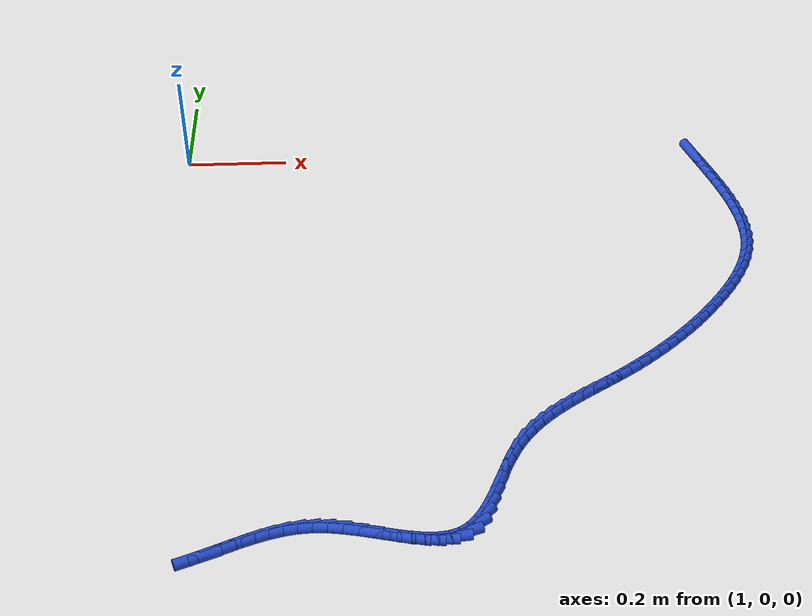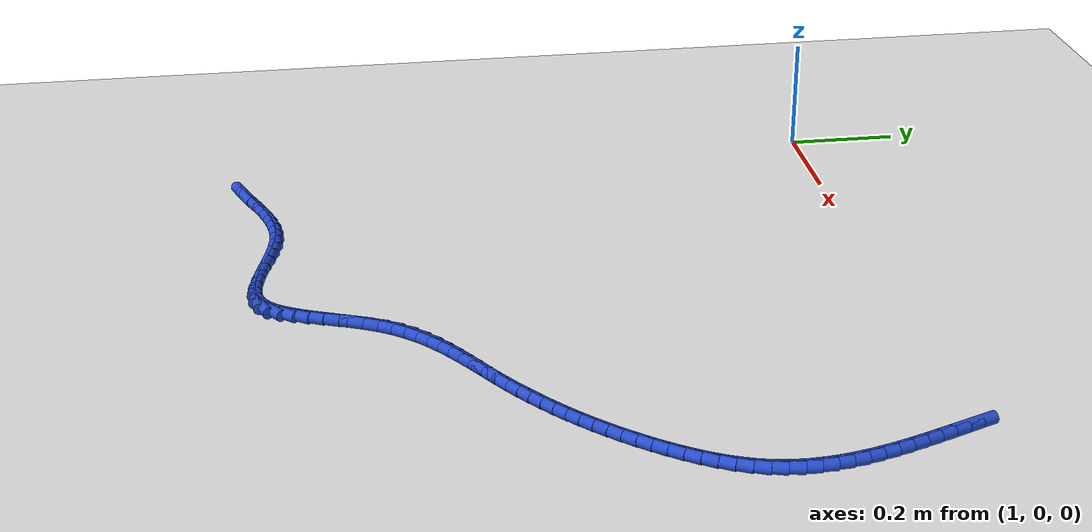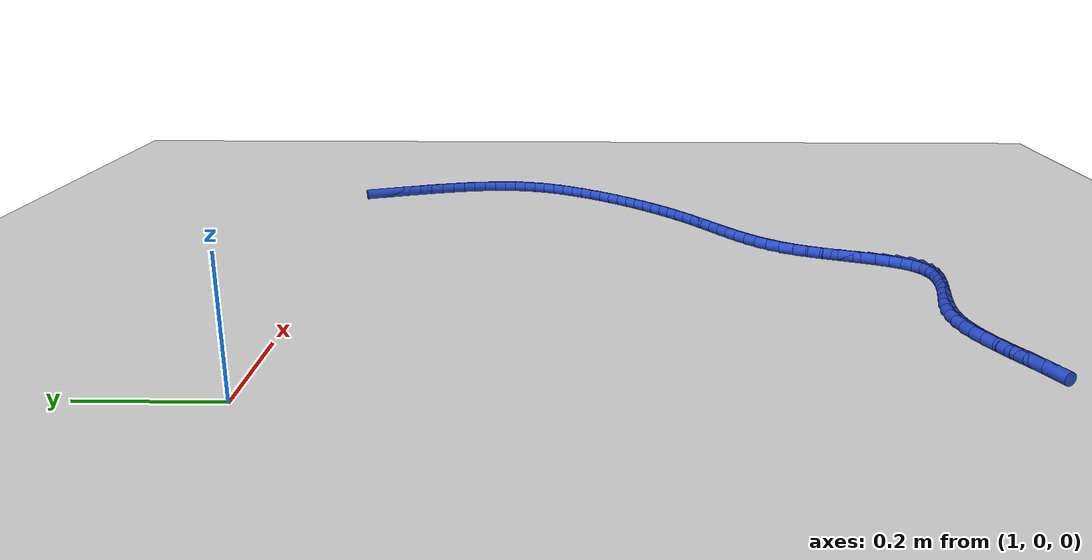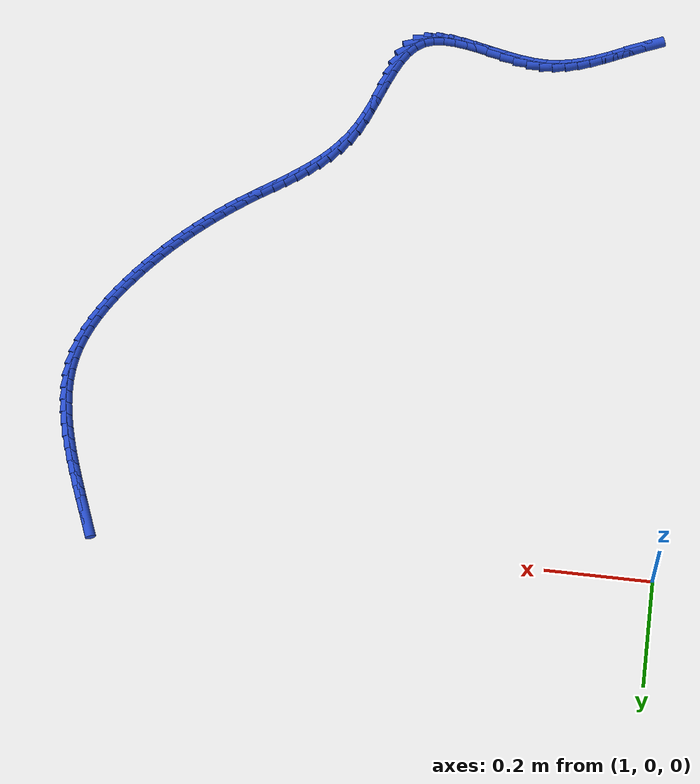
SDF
<sdf version="1.6">
 <world name="default">
  <model name="ground_plane">
   <static>1</static>
   <link name="link">
    <collision name="collision">
     <geometry><plane><normal>0 0 1</normal><size>100 100</size></plane></geometry>
     <surface><friction><ode><mu>100</mu><mu2>50</mu2></ode></friction></surface>
    </collision>
    <visual name="visual">
     <cast_shadows>0</cast_shadows>
     <geometry><plane><normal>0 0 1</normal><size>100 100</size></plane></geometry>
     <material>
      <script><uri>file://media/materials/scripts/gazebo.material</uri><name>Gazebo/WhiteGlow</name></script>
     </material>
    </visual>
   </link>
  </model>
  <model name="line">
   <link name="link_139">
    <pose>2.050679648793524 -0.008787013606834999 0.01 0 1.57 -1.2144746183045905</pose>
    <collision name="collision">
     <geometry><cylinder><radius>0.01</radius><length>0.08</length></cylinder></geometry>
    </collision>
    <visual name="visual">
     <material>
      <script><name>Gazebo/Blue</name><uri>file://media/materials/scripts/gazebo.material</uri></script>
     </material>
     <geometry><cylinder><radius>0.01</radius><length>0.08</length></cylinder></geometry>
    </visual>
   </link>
   <link name="link_140">
    <pose>2.059538758698401 -0.03258843941450075 0.01 0 1.57 -1.215392677395556</pose>
    <collision name="collision">
     <geometry><cylinder><radius>0.01</radius><length>0.08</length></cylinder></geometry>
    </collision>
    <visual name="visual">
     <material>
      <script><name>Gazebo/Blue</name><uri>file://media/materials/scripts/gazebo.material</uri></script>
     </material>
     <geometry><cylinder><radius>0.01</radius><length>0.08</length></cylinder></geometry>
    </visual>
   </link>
   <link name="link_141">
    <pose>2.068392164136328 -0.05644150112282558 0.01 0 1.57 -1.2226019553907888</pose>
    <collision name="collision">
     <geometry><cylinder><radius>0.01</radius><length>0.08</length></cylinder></geometry>
    </collision>
    <visual name="visual">
     <material>
      <script><name>Gazebo/Blue</name><uri>file://media/materials/scripts/gazebo.material</uri></script>
     </material>
     <geometry><cylinder><radius>0.01</radius><length>0.08</length></cylinder></geometry>
    </visual>
   </link>
   <link name="link_142">
    <pose>2.077060394429742 -0.08032200104298498 0.01 0 1.57 -1.2362015601811205</pose>
    <collision name="collision">
     <geometry><cylinder><radius>0.01</radius><length>0.08</length></cylinder></geometry>
    </collision>
    <visual name="visual">
     <material>
      <script><name>Gazebo/Blue</name><uri>file://media/materials/scripts/gazebo.material</uri></script>
     </material>
     <geometry><cylinder><radius>0.01</radius><length>0.08</length></cylinder></geometry>
    </visual>
   </link>
   <link name="link_143">
    <pose>2.0853639789010807 -0.104205741486154 0.01 0 1.57 -1.2564104210199147</pose>
    <collision name="collision">
     <geometry><cylinder><radius>0.01</radius><length>0.08</length></cylinder></geometry>
    </collision>
    <visual name="visual">
     <material>
      <script><name>Gazebo/Blue</name><uri>file://media/materials/scripts/gazebo.material</uri></script>
     </material>
     <geometry><cylinder><radius>0.01</radius><length>0.08</length></cylinder></geometry>
    </visual>
   </link>
   <link name="link_144">
    <pose>2.0931234468727795 -0.1280685247635077 0.01 0 1.57 -1.2835591183289392</pose>
    <collision name="collision">
     <geometry><cylinder><radius>0.01</radius><length>0.08</length></cylinder></geometry>
    </collision>
    <visual name="visual">
     <material>
      <script><name>Gazebo/Blue</name><uri>file://media/materials/scripts/gazebo.material</uri></script>
     </material>
     <geometry><cylinder><radius>0.01</radius><length>0.08</length></cylinder></geometry>
    </visual>
   </link>
   <link name="link_145">
    <pose>2.1001593276672774 -0.15188615318622126 0.01 0 1.57 -1.3180748398498234</pose>
    <collision name="collision">
     <geometry><cylinder><radius>0.01</radius><length>0.08</length></cylinder></geometry>
    </collision>
    <visual name="visual">
     <material>
      <script><name>Gazebo/Blue</name><uri>file://media/materials/scripts/gazebo.material</uri></script>
     </material>
     <geometry><cylinder><radius>0.01</radius><length>0.08</length></cylinder></geometry>
    </visual>
   </link>
   <link name="link_146">
    <pose>2.1062921506070102 -0.1756344290654704 0.01 0 1.57 -1.360453910092519</pose>
    <collision name="collision">
     <geometry><cylinder><radius>0.01</radius><length>0.08</length></cylinder></geometry>
    </collision>
    <visual name="visual">
     <material>
      <script><name>Gazebo/Blue</name><uri>file://media/materials/scripts/gazebo.material</uri></script>
     </material>
     <geometry><cylinder><radius>0.01</radius><length>0.08</length></cylinder></geometry>
    </visual>
   </link>
   <link name="link_147">
    <pose>2.1113424450144147 -0.19928915471242875 0.01 0 1.57 -1.411214143443674</pose>
    <collision name="collision">
     <geometry><cylinder><radius>0.01</radius><length>0.08</length></cylinder></geometry>
    </collision>
    <visual name="visual">
     <material>
      <script><name>Gazebo/Blue</name><uri>file://media/materials/scripts/gazebo.material</uri></script>
     </material>
     <geometry><cylinder><radius>0.01</radius><length>0.08</length></cylinder></geometry>
    </visual>
   </link>
   <link name="link_148">
    <pose>2.1151307402119284 -0.22282613243827226 0.01 0 1.57 -1.470817806057557</pose>
    <collision name="collision">
     <geometry><cylinder><radius>0.01</radius><length>0.08</length></cylinder></geometry>
    </collision>
    <visual name="visual">
     <material>
      <script><name>Gazebo/Blue</name><uri>file://media/materials/scripts/gazebo.material</uri></script>
     </material>
     <geometry><cylinder><radius>0.01</radius><length>0.08</length></cylinder></geometry>
    </visual>
   </link>
   <link name="link_149">
    <pose>2.1174775655219884 -0.24622116455417586 0.01 0 1.57 -1.5395572688172277</pose>
    <collision name="collision">
     <geometry><cylinder><radius>0.01</radius><length>0.08</length></cylinder></geometry>
    </collision>
    <visual name="visual">
     <material>
      <script><name>Gazebo/Blue</name><uri>file://media/materials/scripts/gazebo.material</uri></script>
     </material>
     <geometry><cylinder><radius>0.01</radius><length>0.08</length></cylinder></geometry>
    </visual>
   </link>
   <link name="link_150">
    <pose>2.1182034502670315 -0.2694500533713148 0.01 0 1.57 1.5241897275901795</pose>
    <collision name="collision">
     <geometry><cylinder><radius>0.01</radius><length>0.08</length></cylinder></geometry>
    </collision>
    <visual name="visual">
     <material>
      <script><name>Gazebo/Blue</name><uri>file://media/materials/scripts/gazebo.material</uri></script>
     </material>
     <geometry><cylinder><radius>0.01</radius><length>0.08</length></cylinder></geometry>
    </visual>
   </link>
   <link name="link_151">
    <pose>2.1171289237694944 -0.29248860120086395 0.01 0 1.57 1.4377623757808604</pose>
    <collision name="collision">
     <geometry><cylinder><radius>0.01</radius><length>0.08</length></cylinder></geometry>
    </collision>
    <visual name="visual">
     <material>
      <script><name>Gazebo/Blue</name><uri>file://media/materials/scripts/gazebo.material</uri></script>
     </material>
     <geometry><cylinder><radius>0.01</radius><length>0.08</length></cylinder></geometry>
    </visual>
   </link>
   <link name="link_152">
    <pose>2.114074515351814 -0.3153126103539986 0.01 0 1.57 1.3442098530349407</pose>
    <collision name="collision">
     <geometry><cylinder><radius>0.01</radius><length>0.08</length></cylinder></geometry>
    </collision>
    <visual name="visual">
     <material>
      <script><name>Gazebo/Blue</name><uri>file://media/materials/scripts/gazebo.material</uri></script>
     </material>
     <geometry><cylinder><radius>0.01</radius><length>0.08</length></cylinder></geometry>
    </visual>
   </link>
   <link name="link_153">
    <pose>2.108867665094674 -0.3378975185701371 0.01 0 1.57 1.2530020199494376</pose>
    <collision name="collision">
     <geometry><cylinder><radius>0.01</radius><length>0.08</length></cylinder></geometry>
    </collision>
    <visual name="visual">
     <material>
      <script><name>Gazebo/Blue</name><uri>file://media/materials/scripts/gazebo.material</uri></script>
     </material>
     <geometry><cylinder><radius>0.01</radius><length>0.08</length></cylinder></geometry>
    </visual>
   </link>
   <link name="link_154">
    <pose>2.101528587020586 -0.3602085939470914 0.01 0 1.57 1.1731261189622686</pose>
    <collision name="collision">
     <geometry><cylinder><radius>0.01</radius><length>0.08</length></cylinder></geometry>
    </collision>
    <visual name="visual">
     <material>
      <script><name>Gazebo/Blue</name><uri>file://media/materials/scripts/gazebo.material</uri></script>
     </material>
     <geometry><cylinder><radius>0.01</radius><length>0.08</length></cylinder></geometry>
    </visual>
   </link>
   <link name="link_155">
    <pose>2.092291174830781 -0.3821998320749336 0.01 0 1.57 1.1042547114081966</pose>
    <collision name="collision">
     <geometry><cylinder><radius>0.01</radius><length>0.08</length></cylinder></geometry>
    </collision>
    <visual name="visual">
     <material>
      <script><name>Gazebo/Blue</name><uri>file://media/materials/scripts/gazebo.material</uri></script>
     </material>
     <geometry><cylinder><radius>0.01</radius><length>0.08</length></cylinder></geometry>
    </visual>
   </link>
   <link name="link_156">
    <pose>2.0814004280314506 -0.40382464266550266 0.01 0 1.57 1.0453451092384771</pose>
    <collision name="collision">
     <geometry><cylinder><radius>0.01</radius><length>0.08</length></cylinder></geometry>
    </collision>
    <visual name="visual">
     <material>
      <script><name>Gazebo/Blue</name><uri>file://media/materials/scripts/gazebo.material</uri></script>
     </material>
     <geometry><cylinder><radius>0.01</radius><length>0.08</length></cylinder></geometry>
    </visual>
   </link>
   <link name="link_157">
    <pose>2.0691013461287824 -0.42503643543063946 0.01 0 1.57 0.9953194126716203</pose>
    <collision name="collision">
     <geometry><cylinder><radius>0.01</radius><length>0.08</length></cylinder></geometry>
    </collision>
    <visual name="visual">
     <material>
      <script><name>Gazebo/Blue</name><uri>file://media/materials/scripts/gazebo.material</uri></script>
     </material>
     <geometry><cylinder><radius>0.01</radius><length>0.08</length></cylinder></geometry>
    </visual>
   </link>
   <link name="link_158">
    <pose>2.0556389286289667 -0.44578862008218423 0.01 0 1.57 0.9531900381116258</pose>
    <collision name="collision">
     <geometry><cylinder><radius>0.01</radius><length>0.08</length></cylinder></geometry>
    </collision>
    <visual name="visual">
     <material>
      <script><name>Gazebo/Blue</name><uri>file://media/materials/scripts/gazebo.material</uri></script>
     </material>
     <geometry><cylinder><radius>0.01</radius><length>0.08</length></cylinder></geometry>
    </visual>
   </link>
   <link name="link_159">
    <pose>2.041258175038193 -0.46603460633197713 0.01 0 1.57 0.9181228567130129</pose>
    <collision name="collision">
     <geometry><cylinder><radius>0.01</radius><length>0.08</length></cylinder></geometry>
    </collision>
    <visual name="visual">
     <material>
      <script><name>Gazebo/Blue</name><uri>file://media/materials/scripts/gazebo.material</uri></script>
     </material>
     <geometry><cylinder><radius>0.01</radius><length>0.08</length></cylinder></geometry>
    </visual>
   </link>
   <link name="link_160">
    <pose>2.0262040718583325 -0.48572780739809107 0.01 0 1.57 0.8882813793783929</pose>
    <collision name="collision">
     <geometry><cylinder><radius>0.01</radius><length>0.08</length></cylinder></geometry>
    </collision>
    <visual name="visual">
     <material>
      <script><name>Gazebo/Blue</name><uri>file://media/materials/scripts/gazebo.material</uri></script>
     </material>
     <geometry><cylinder><radius>0.01</radius><length>0.08</length></cylinder></geometry>
    </visual>
   </link>
   <link name="link_161">
    <pose>2.0106735042192088 -0.5048346056250267 0.01 0 1.57 0.8595409217209122</pose>
    <collision name="collision">
     <geometry><cylinder><radius>0.01</radius><length>0.08</length></cylinder></geometry>
    </collision>
    <visual name="visual">
     <material>
      <script><name>Gazebo/Blue</name><uri>file://media/materials/scripts/gazebo.material</uri></script>
     </material>
     <geometry><cylinder><radius>0.01</radius><length>0.08</length></cylinder></geometry>
    </visual>
   </link>
   <link name="link_162">
    <pose>1.9947068219251365 -0.5233635885240033 0.01 0 1.57 0.8311744569064379</pose>
    <collision name="collision">
     <geometry><cylinder><radius>0.01</radius><length>0.08</length></cylinder></geometry>
    </collision>
    <visual name="visual">
     <material>
      <script><name>Gazebo/Blue</name><uri>file://media/materials/scripts/gazebo.material</uri></script>
     </material>
     <geometry><cylinder><radius>0.01</radius><length>0.08</length></cylinder></geometry>
    </visual>
   </link>
   <link name="link_163">
    <pose>1.9783125863663102 -0.5413319144212507 0.01 0 1.57 0.8032594220083987</pose>
    <collision name="collision">
     <geometry><cylinder><radius>0.01</radius><length>0.08</length></cylinder></geometry>
    </collision>
    <visual name="visual">
     <material>
      <script><name>Gazebo/Blue</name><uri>file://media/materials/scripts/gazebo.material</uri></script>
     </material>
     <geometry><cylinder><radius>0.01</radius><length>0.08</length></cylinder></geometry>
    </visual>
   </link>
   <link name="link_164">
    <pose>1.9614993589329264 -0.558756741643 0.01 0 1.57 0.7758688326804531</pose>
    <collision name="collision">
     <geometry><cylinder><radius>0.01</radius><length>0.08</length></cylinder></geometry>
    </collision>
    <visual name="visual">
     <material>
      <script><name>Gazebo/Blue</name><uri>file://media/materials/scripts/gazebo.material</uri></script>
     </material>
     <geometry><cylinder><radius>0.01</radius><length>0.08</length></cylinder></geometry>
    </visual>
   </link>
   <link name="link_165">
    <pose>1.9442757010151812 -0.57565522851548 0.01 0 1.57 0.749070531180466</pose>
    <collision name="collision">
     <geometry><cylinder><radius>0.01</radius><length>0.08</length></cylinder></geometry>
    </collision>
    <visual name="visual">
     <material>
      <script><name>Gazebo/Blue</name><uri>file://media/materials/scripts/gazebo.material</uri></script>
     </material>
     <geometry><cylinder><radius>0.01</radius><length>0.08</length></cylinder></geometry>
    </visual>
   </link>
   <link name="link_166">
    <pose>1.9266501740032704 -0.5920445333649221 0.01 0 1.57 0.7229265960045925</pose>
    <collision name="collision">
     <geometry><cylinder><radius>0.01</radius><length>0.08</length></cylinder></geometry>
    </collision>
    <visual name="visual">
     <material>
      <script><name>Gazebo/Blue</name><uri>file://media/materials/scripts/gazebo.material</uri></script>
     </material>
     <geometry><cylinder><radius>0.01</radius><length>0.08</length></cylinder></geometry>
    </visual>
   </link>
   <link name="link_167">
    <pose>1.9086313392873888 -0.607941814517556 0.01 0 1.57 0.6974929203436031</pose>
    <collision name="collision">
     <geometry><cylinder><radius>0.01</radius><length>0.08</length></cylinder></geometry>
    </collision>
    <visual name="visual">
     <material>
      <script><name>Gazebo/Blue</name><uri>file://media/materials/scripts/gazebo.material</uri></script>
     </material>
     <geometry><cylinder><radius>0.01</radius><length>0.08</length></cylinder></geometry>
    </visual>
   </link>
   <link name="link_168">
    <pose>1.8902277582577327 -0.6233642302996122 0.01 0 1.57 0.6728189582947963</pose>
    <collision name="collision">
     <geometry><cylinder><radius>0.01</radius><length>0.08</length></cylinder></geometry>
    </collision>
    <visual name="visual">
     <material>
      <script><name>Gazebo/Blue</name><uri>file://media/materials/scripts/gazebo.material</uri></script>
     </material>
     <geometry><cylinder><radius>0.01</radius><length>0.08</length></cylinder></geometry>
    </visual>
   </link>
   <link name="link_169">
    <pose>1.871447992304498 -0.6383289390373209 0.01 0 1.57 0.6489476304886488</pose>
    <collision name="collision">
     <geometry><cylinder><radius>0.01</radius><length>0.08</length></cylinder></geometry>
    </collision>
    <visual name="visual">
     <material>
      <script><name>Gazebo/Blue</name><uri>file://media/materials/scripts/gazebo.material</uri></script>
     </material>
     <geometry><cylinder><radius>0.01</radius><length>0.08</length></cylinder></geometry>
    </visual>
   </link>
   <link name="link_170">
    <pose>1.8523006028178806 -0.6528530990569124 0.01 0 1.57 0.6259153749144238</pose>
    <collision name="collision">
     <geometry><cylinder><radius>0.01</radius><length>0.08</length></cylinder></geometry>
    </collision>
    <visual name="visual">
     <material>
      <script><name>Gazebo/Blue</name><uri>file://media/materials/scripts/gazebo.material</uri></script>
     </material>
     <geometry><cylinder><radius>0.01</radius><length>0.08</length></cylinder></geometry>
    </visual>
   </link>
   <link name="link_171">
    <pose>1.8327941511880748 -0.6669538686846166 0.01 0 1.57 0.6043715434279657</pose>
    <collision name="collision">
     <geometry><cylinder><radius>0.01</radius><length>0.08</length></cylinder></geometry>
    </collision>
    <visual name="visual">
     <material>
      <script><name>Gazebo/Blue</name><uri>file://media/materials/scripts/gazebo.material</uri></script>
     </material>
     <geometry><cylinder><radius>0.01</radius><length>0.08</length></cylinder></geometry>
    </visual>
   </link>
   <link name="link_172">
    <pose>1.8129469818098864 -0.6806598021724078 0.01 0 1.57 0.5910864760565635</pose>
    <collision name="collision">
     <geometry><cylinder><radius>0.01</radius><length>0.08</length></cylinder></geometry>
    </collision>
    <visual name="visual">
     <material>
      <script><name>Gazebo/Blue</name><uri>file://media/materials/scripts/gazebo.material</uri></script>
     </material>
     <geometry><cylinder><radius>0.01</radius><length>0.08</length></cylinder></geometry>
    </visual>
   </link>
   <link name="link_173">
    <pose>1.7928845961975441 -0.6941242778549156 0.01 0 1.57 0.590163819289677</pose>
    <collision name="collision">
     <geometry><cylinder><radius>0.01</radius><length>0.08</length></cylinder></geometry>
    </collision>
    <visual name="visual">
     <material>
      <script><name>Gazebo/Blue</name><uri>file://media/materials/scripts/gazebo.material</uri></script>
     </material>
     <geometry><cylinder><radius>0.01</radius><length>0.08</length></cylinder></geometry>
    </visual>
   </link>
   <link name="link_174">
    <pose>1.7727986323593092 -0.7075777144654075 0.01 0 1.57 0.6016414415759073</pose>
    <collision name="collision">
     <geometry><cylinder><radius>0.01</radius><length>0.08</length></cylinder></geometry>
    </collision>
    <visual name="visual">
     <material>
      <script><name>Gazebo/Blue</name><uri>file://media/materials/scripts/gazebo.material</uri></script>
     </material>
     <geometry><cylinder><radius>0.01</radius><length>0.08</length></cylinder></geometry>
    </visual>
   </link>
   <link name="link_175">
    <pose>1.752881703423065 -0.7212516666244623 0.01 0 1.57 0.6255779211714362</pose>
    <collision name="collision">
     <geometry><cylinder><radius>0.01</radius><length>0.08</length></cylinder></geometry>
    </collision>
    <visual name="visual">
     <material>
      <script><name>Gazebo/Blue</name><uri>file://media/materials/scripts/gazebo.material</uri></script>
     </material>
     <geometry><cylinder><radius>0.01</radius><length>0.08</length></cylinder></geometry>
    </visual>
   </link>
   <link name="link_176">
    <pose>1.7333264225166929 -0.7353776889526585 0.01 0 1.57 0.6620614048952255</pose>
    <collision name="collision">
     <geometry><cylinder><radius>0.01</radius><length>0.08</length></cylinder></geometry>
    </collision>
    <visual name="visual">
     <material>
      <script><name>Gazebo/Blue</name><uri>file://media/materials/scripts/gazebo.material</uri></script>
     </material>
     <geometry><cylinder><radius>0.01</radius><length>0.08</length></cylinder></geometry>
    </visual>
   </link>
   <link name="link_177">
    <pose>1.714325402768073 -0.7501873360705735 0.01 0 1.57 0.7110974232570698</pose>
    <collision name="collision">
     <geometry><cylinder><radius>0.01</radius><length>0.08</length></cylinder></geometry>
    </collision>
    <visual name="visual">
     <material>
      <script><name>Gazebo/Blue</name><uri>file://media/materials/scripts/gazebo.material</uri></script>
     </material>
     <geometry><cylinder><radius>0.01</radius><length>0.08</length></cylinder></geometry>
    </visual>
   </link>
   <link name="link_178">
    <pose>1.6960712573050885 -0.7659121625987856 0.01 0 1.57 0.7724375992230861</pose>
    <collision name="collision">
     <geometry><cylinder><radius>0.01</radius><length>0.08</length></cylinder></geometry>
    </collision>
    <visual name="visual">
     <material>
      <script><name>Gazebo/Blue</name><uri>file://media/materials/scripts/gazebo.material</uri></script>
     </material>
     <geometry><cylinder><radius>0.01</radius><length>0.08</length></cylinder></geometry>
    </visual>
   </link>
   <link name="link_179">
    <pose>1.6787565992556206 -0.7827837231578729 0.01 0 1.57 0.8453653068863105</pose>
    <collision name="collision">
     <geometry><cylinder><radius>0.01</radius><length>0.08</length></cylinder></geometry>
    </collision>
    <visual name="visual">
     <material>
      <script><name>Gazebo/Blue</name><uri>file://media/materials/scripts/gazebo.material</uri></script>
     </material>
     <geometry><cylinder><radius>0.01</radius><length>0.08</length></cylinder></geometry>
    </visual>
   </link>
   <link name="link_180">
    <pose>1.6625740417475499 -0.8010335723684131 0.01 0 1.57 0.928486245190006</pose>
    <collision name="collision">
     <geometry><cylinder><radius>0.01</radius><length>0.08</length></cylinder></geometry>
    </collision>
    <visual name="visual">
     <material>
      <script><name>Gazebo/Blue</name><uri>file://media/materials/scripts/gazebo.material</uri></script>
     </material>
     <geometry><cylinder><radius>0.01</radius><length>0.08</length></cylinder></geometry>
    </visual>
   </link>
   <link name="link_181">
    <pose>1.64771619790876 -0.8208932648509859 0.01 0 1.57 1.0196000402221195</pose>
    <collision name="collision">
     <geometry><cylinder><radius>0.01</radius><length>0.08</length></cylinder></geometry>
    </collision>
    <visual name="visual">
     <material>
      <script><name>Gazebo/Blue</name><uri>file://media/materials/scripts/gazebo.material</uri></script>
     </material>
     <geometry><cylinder><radius>0.01</radius><length>0.08</length></cylinder></geometry>
    </visual>
   </link>
   <link name="link_182">
    <pose>1.634375535492032 -0.842594136003111 0.01 0 1.57 1.1067467859952</pose>
    <collision name="collision">
     <geometry><cylinder><radius>0.01</radius><length>0.08</length></cylinder></geometry>
    </collision>
    <visual name="visual">
     <material>
      <script><name>Gazebo/Blue</name><uri>file://media/materials/scripts/gazebo.material</uri></script>
     </material>
     <geometry><cylinder><radius>0.01</radius><length>0.08</length></cylinder></geometry>
    </visual>
   </link>
   <link name="link_183">
    <pose>1.6225920070528574 -0.866137531027175 0.01 0 1.57 1.1647815886225905</pose>
    <collision name="collision">
     <geometry><cylinder><radius>0.01</radius><length>0.08</length></cylinder></geometry>
    </collision>
    <visual name="visual">
     <material>
      <script><name>Gazebo/Blue</name><uri>file://media/materials/scripts/gazebo.material</uri></script>
     </material>
     <geometry><cylinder><radius>0.01</radius><length>0.08</length></cylinder></geometry>
    </visual>
   </link>
   <link name="link_184">
    <pose>1.6119641511650007 -0.890859150720294 0.01 0 1.57 1.1934960166040331</pose>
    <collision name="collision">
     <geometry><cylinder><radius>0.01</radius><length>0.08</length></cylinder></geometry>
    </collision>
    <visual name="visual">
     <material>
      <script><name>Gazebo/Blue</name><uri>file://media/materials/scripts/gazebo.material</uri></script>
     </material>
     <geometry><cylinder><radius>0.01</radius><length>0.08</length></cylinder></geometry>
    </visual>
   </link>
   <link name="link_185">
    <pose>1.6020111111250803 -0.9159749692188459 0.01 0 1.57 1.1948766239905282</pose>
    <collision name="collision">
     <geometry><cylinder><radius>0.01</radius><length>0.08</length></cylinder></geometry>
    </collision>
    <visual name="visual">
     <material>
      <script><name>Gazebo/Blue</name><uri>file://media/materials/scripts/gazebo.material</uri></script>
     </material>
     <geometry><cylinder><radius>0.01</radius><length>0.08</length></cylinder></geometry>
    </visual>
   </link>
   <link name="link_186">
    <pose>1.5922520302297154 -0.9407009606592089 0.01 0 1.57 1.16762023827369</pose>
    <collision name="collision">
     <geometry><cylinder><radius>0.01</radius><length>0.08</length></cylinder></geometry>
    </collision>
    <visual name="visual">
     <material>
      <script><name>Gazebo/Blue</name><uri>file://media/materials/scripts/gazebo.material</uri></script>
     </material>
     <geometry><cylinder><radius>0.01</radius><length>0.08</length></cylinder></geometry>
    </visual>
   </link>
   <link name="link_187">
    <pose>1.582206051775525 -0.9642530991777611 0.01 0 1.57 1.106533823152765</pose>
    <collision name="collision">
     <geometry><cylinder><radius>0.01</radius><length>0.08</length></cylinder></geometry>
    </collision>
    <visual name="visual">
     <material>
      <script><name>Gazebo/Blue</name><uri>file://media/materials/scripts/gazebo.material</uri></script>
     </material>
     <geometry><cylinder><radius>0.01</radius><length>0.08</length></cylinder></geometry>
    </visual>
   </link>
   <link name="link_188">
    <pose>1.5713923190591292 -0.985847358910881 0.01 0 1.57 1.0016021911450614</pose>
    <collision name="collision">
     <geometry><cylinder><radius>0.01</radius><length>0.08</length></cylinder></geometry>
    </collision>
    <visual name="visual">
     <material>
      <script><name>Gazebo/Blue</name><uri>file://media/materials/scripts/gazebo.material</uri></script>
     </material>
     <geometry><cylinder><radius>0.01</radius><length>0.08</length></cylinder></geometry>
    </visual>
   </link>
   <link name="link_189">
    <pose>1.559329975377146 -1.004699713994946 0.01 0 1.57 0.8380522715278486</pose>
    <collision name="collision">
     <geometry><cylinder><radius>0.01</radius><length>0.08</length></cylinder></geometry>
    </collision>
    <visual name="visual">
     <material>
      <script><name>Gazebo/Blue</name><uri>file://media/materials/scripts/gazebo.material</uri></script>
     </material>
     <geometry><cylinder><radius>0.01</radius><length>0.08</length></cylinder></geometry>
    </visual>
   </link>
   <link name="link_190">
    <pose>1.545538164026195 -1.020026138566335 0.01 0 1.57 0.6029514344375447</pose>
    <collision name="collision">
     <geometry><cylinder><radius>0.01</radius><length>0.08</length></cylinder></geometry>
    </collision>
    <visual name="visual">
     <material>
      <script><name>Gazebo/Blue</name><uri>file://media/materials/scripts/gazebo.material</uri></script>
     </material>
     <geometry><cylinder><radius>0.01</radius><length>0.08</length></cylinder></geometry>
    </visual>
   </link>
   <link name="link_191">
    <pose>1.5295362825392356 -1.0310430886597708 0.01 0 1.57 0.3282758830392105</pose>
    <collision name="collision">
     <geometry><cylinder><radius>0.01</radius><length>0.08</length></cylinder></geometry>
    </collision>
    <visual name="visual">
     <material>
      <script><name>Gazebo/Blue</name><uri>file://media/materials/scripts/gazebo.material</uri></script>
     </material>
     <geometry><cylinder><radius>0.01</radius><length>0.08</length></cylinder></geometry>
    </visual>
   </link>
   <link name="link_192">
    <pose>1.5110417295066743 -1.037342326146252 0.01 0 1.57 0.10675286551021233</pose>
    <collision name="collision">
     <geometry><cylinder><radius>0.01</radius><length>0.08</length></cylinder></geometry>
    </collision>
    <visual name="visual">
     <material>
      <script><name>Gazebo/Blue</name><uri>file://media/materials/scripts/gazebo.material</uri></script>
     </material>
     <geometry><cylinder><radius>0.01</radius><length>0.08</length></cylinder></geometry>
    </visual>
   </link>
   <link name="link_193">
    <pose>1.4903241726724175 -1.0395624246621966 0.01 0 1.57 -0.04600810363367387</pose>
    <collision name="collision">
     <geometry><cylinder><radius>0.01</radius><length>0.08</length></cylinder></geometry>
    </collision>
    <visual name="visual">
     <material>
      <script><name>Gazebo/Blue</name><uri>file://media/materials/scripts/gazebo.material</uri></script>
     </material>
     <geometry><cylinder><radius>0.01</radius><length>0.08</length></cylinder></geometry>
    </visual>
   </link>
   <link name="link_194">
    <pose>1.4677488146941768 -1.0385230417795406 0.01 0 1.57 -0.143563132351141</pose>
    <collision name="collision">
     <geometry><cylinder><radius>0.01</radius><length>0.08</length></cylinder></geometry>
    </collision>
    <visual name="visual">
     <material>
      <script><name>Gazebo/Blue</name><uri>file://media/materials/scripts/gazebo.material</uri></script>
     </material>
     <geometry><cylinder><radius>0.01</radius><length>0.08</length></cylinder></geometry>
    </visual>
   </link>
   <link name="link_195">
    <pose>1.443680858229666 -1.0350438350702216 0.01 0 1.57 -0.19969584126019915</pose>
    <collision name="collision">
     <geometry><cylinder><radius>0.01</radius><length>0.08</length></cylinder></geometry>
    </collision>
    <visual name="visual">
     <material>
      <script><name>Gazebo/Blue</name><uri>file://media/materials/scripts/gazebo.material</uri></script>
     </material>
     <geometry><cylinder><radius>0.01</radius><length>0.08</length></cylinder></geometry>
    </visual>
   </link>
   <link name="link_196">
    <pose>1.4184855059365975 -1.0299444621061755 0.01 0 1.57 -0.22349270082050643</pose>
    <collision name="collision">
     <geometry><cylinder><radius>0.01</radius><length>0.08</length></cylinder></geometry>
    </collision>
    <visual name="visual">
     <material>
      <script><name>Gazebo/Blue</name><uri>file://media/materials/scripts/gazebo.material</uri></script>
     </material>
     <geometry><cylinder><radius>0.01</radius><length>0.08</length></cylinder></geometry>
    </visual>
   </link>
   <link name="link_197">
    <pose>1.3925279604726837 -1.0240445804593397 0.01 0 1.57 -0.21954269887442324</pose>
    <collision name="collision">
     <geometry><cylinder><radius>0.01</radius><length>0.08</length></cylinder></geometry>
    </collision>
    <visual name="visual">
     <material>
      <script><name>Gazebo/Blue</name><uri>file://media/materials/scripts/gazebo.material</uri></script>
     </material>
     <geometry><cylinder><radius>0.01</radius><length>0.08</length></cylinder></geometry>
    </visual>
   </link>
   <link name="link_198">
    <pose>1.3661734244956367 -1.0181638477016497 0.01 0 1.57 -0.18880511707203204</pose>
    <collision name="collision">
     <geometry><cylinder><radius>0.01</radius><length>0.08</length></cylinder></geometry>
    </collision>
    <visual name="visual">
     <material>
      <script><name>Gazebo/Blue</name><uri>file://media/materials/scripts/gazebo.material</uri></script>
     </material>
     <geometry><cylinder><radius>0.01</radius><length>0.08</length></cylinder></geometry>
    </visual>
   </link>
   <link name="link_199">
    <pose>1.3397871006631692 -1.013121921405043 0.01 0 1.57 -0.1291460665410747</pose>
    <collision name="collision">
     <geometry><cylinder><radius>0.01</radius><length>0.08</length></cylinder></geometry>
    </collision>
    <visual name="visual">
     <material>
      <script><name>Gazebo/Blue</name><uri>file://media/materials/scripts/gazebo.material</uri></script>
     </material>
     <geometry><cylinder><radius>0.01</radius><length>0.08</length></cylinder></geometry>
    </visual>
   </link>
   <link name="link_200">
    <pose>1.3137341916329948 -1.0097384591414562 0.01 0 1.57 -0.03606244030852448</pose>
    <collision name="collision">
     <geometry><cylinder><radius>0.01</radius><length>0.08</length></cylinder></geometry>
    </collision>
    <visual name="visual">
     <material>
      <script><name>Gazebo/Blue</name><uri>file://media/materials/scripts/gazebo.material</uri></script>
     </material>
     <geometry><cylinder><radius>0.01</radius><length>0.08</length></cylinder></geometry>
    </visual>
   </link>
   <link name="link_201">
    <pose>1.2883760445358714 -1.0088235858435892 0.01 0 1.57 0.07658779227271935</pose>
    <collision name="collision">
     <geometry><cylinder><radius>0.01</radius><length>0.08</length></cylinder></geometry>
    </collision>
    <visual name="visual">
     <material>
      <script><name>Gazebo/Blue</name><uri>file://media/materials/scripts/gazebo.material</uri></script>
     </material>
     <geometry><cylinder><radius>0.01</radius><length>0.08</length></cylinder></geometry>
    </visual>
   </link>
   <link name="link_202">
    <pose>1.263878276976755 -1.0107034928652632 0.01 0 1.57 0.17896174038734308</pose>
    <collision name="collision">
     <geometry><cylinder><radius>0.01</radius><length>0.08</length></cylinder></geometry>
    </collision>
    <visual name="visual">
     <material>
      <script><name>Gazebo/Blue</name><uri>file://media/materials/scripts/gazebo.material</uri></script>
     </material>
     <geometry><cylinder><radius>0.01</radius><length>0.08</length></cylinder></geometry>
    </visual>
   </link>
   <link name="link_203">
    <pose>1.2401219977539486 -1.0150009346901514 0.01 0 1.57 0.26492793499115264</pose>
    <collision name="collision">
     <geometry><cylinder><radius>0.01</radius><length>0.08</length></cylinder></geometry>
    </collision>
    <visual name="visual">
     <material>
      <script><name>Gazebo/Blue</name><uri>file://media/materials/scripts/gazebo.material</uri></script>
     </material>
     <geometry><cylinder><radius>0.01</radius><length>0.08</length></cylinder></geometry>
    </visual>
   </link>
   <link name="link_204">
    <pose>1.2169659219013598 -1.0212832980974154 0.01 0 1.57 0.3323770322250803</pose>
    <collision name="collision">
     <geometry><cylinder><radius>0.01</radius><length>0.08</length></cylinder></geometry>
    </collision>
    <visual name="visual">
     <material>
      <script><name>Gazebo/Blue</name><uri>file://media/materials/scripts/gazebo.material</uri></script>
     </material>
     <geometry><cylinder><radius>0.01</radius><length>0.08</length></cylinder></geometry>
    </visual>
   </link>
   <link name="link_205">
    <pose>1.1942687644528933 -1.0291179698662152 0.01 0 1.57 0.38060488174020424</pose>
    <collision name="collision">
     <geometry><cylinder><radius>0.01</radius><length>0.08</length></cylinder></geometry>
    </collision>
    <visual name="visual">
     <material>
      <script><name>Gazebo/Blue</name><uri>file://media/materials/scripts/gazebo.material</uri></script>
     </material>
     <geometry><cylinder><radius>0.01</radius><length>0.08</length></cylinder></geometry>
    </visual>
   </link>
   <link name="link_206">
    <pose>1.1718892404424586 -1.0380723367757132 0.01 0 1.57 0.4096687043836504</pose>
    <collision name="collision">
     <geometry><cylinder><radius>0.01</radius><length>0.08</length></cylinder></geometry>
    </collision>
    <visual name="visual">
     <material>
      <script><name>Gazebo/Blue</name><uri>file://media/materials/scripts/gazebo.material</uri></script>
     </material>
     <geometry><cylinder><radius>0.01</radius><length>0.08</length></cylinder></geometry>
    </visual>
   </link>
   <link name="link_207">
    <pose>1.1496860649039606 -1.04771378560507 0.01 0 1.57 0.419858853652682</pose>
    <collision name="collision">
     <geometry><cylinder><radius>0.01</radius><length>0.08</length></cylinder></geometry>
    </collision>
    <visual name="visual">
     <material>
      <script><name>Gazebo/Blue</name><uri>file://media/materials/scripts/gazebo.material</uri></script>
     </material>
     <geometry><cylinder><radius>0.01</radius><length>0.08</length></cylinder></geometry>
    </visual>
   </link>
   <link name="link_208">
    <pose>1.1275179528713062 -1.0576097031334473 0.01 0 1.57 0.4113832218261057</pose>
    <collision name="collision">
     <geometry><cylinder><radius>0.01</radius><length>0.08</length></cylinder></geometry>
    </collision>
    <visual name="visual">
     <material>
      <script><name>Gazebo/Blue</name><uri>file://media/materials/scripts/gazebo.material</uri></script>
     </material>
     <geometry><cylinder><radius>0.01</radius><length>0.08</length></cylinder></geometry>
    </visual>
   </link>
   <link name="link_209">
    <pose>1.1052436193784034 -1.0673274761400051 0.01 0 1.57 0.38426254617759653</pose>
    <collision name="collision">
     <geometry><cylinder><radius>0.01</radius><length>0.08</length></cylinder></geometry>
    </collision>
    <visual name="visual">
     <material>
      <script><name>Gazebo/Blue</name><uri>file://media/materials/scripts/gazebo.material</uri></script>
     </material>
     <geometry><cylinder><radius>0.01</radius><length>0.08</length></cylinder></geometry>
    </visual>
   </link>
  </model>
 </world>
</sdf>
